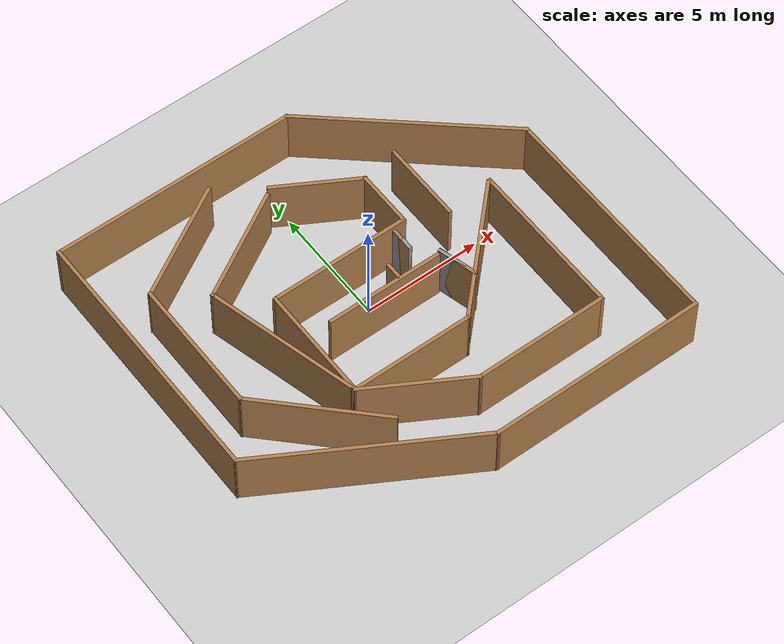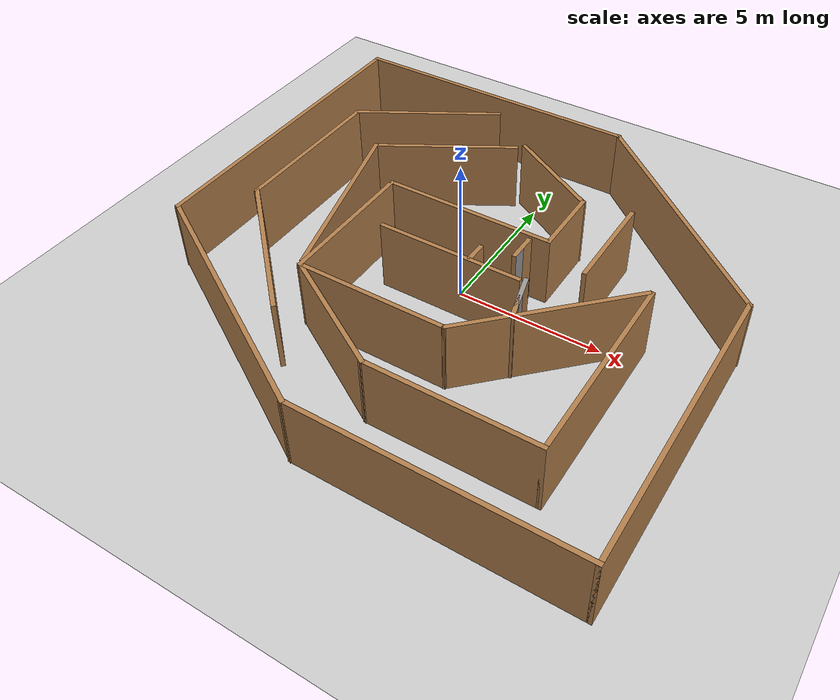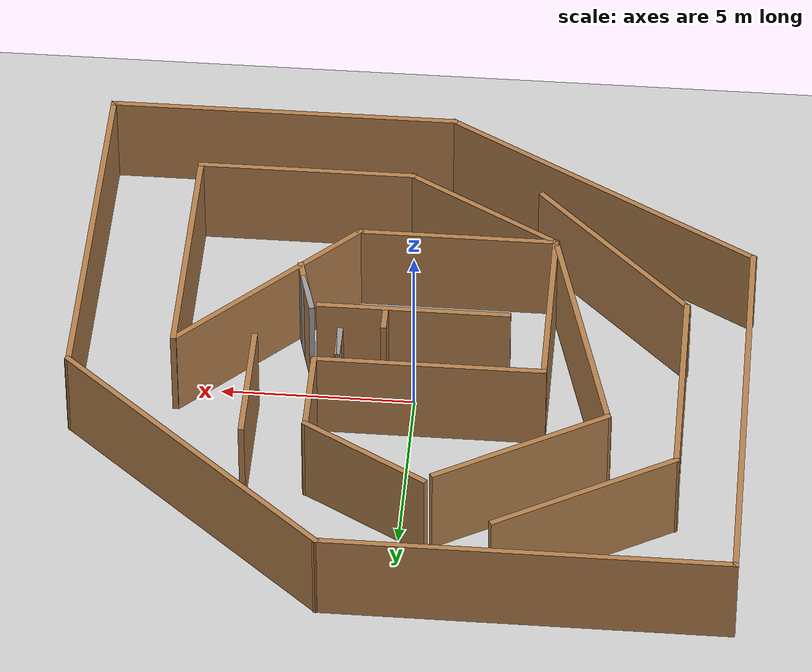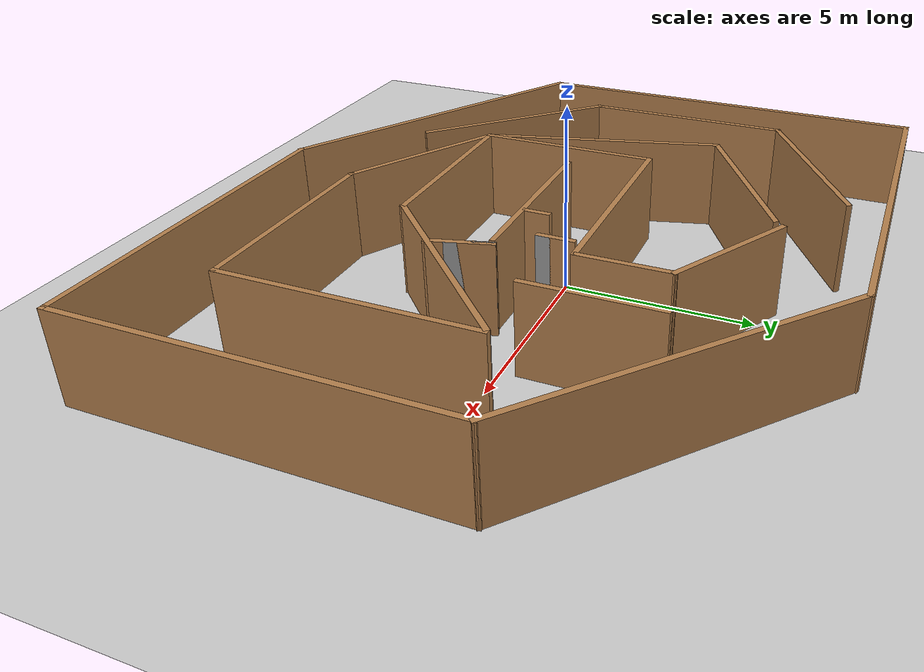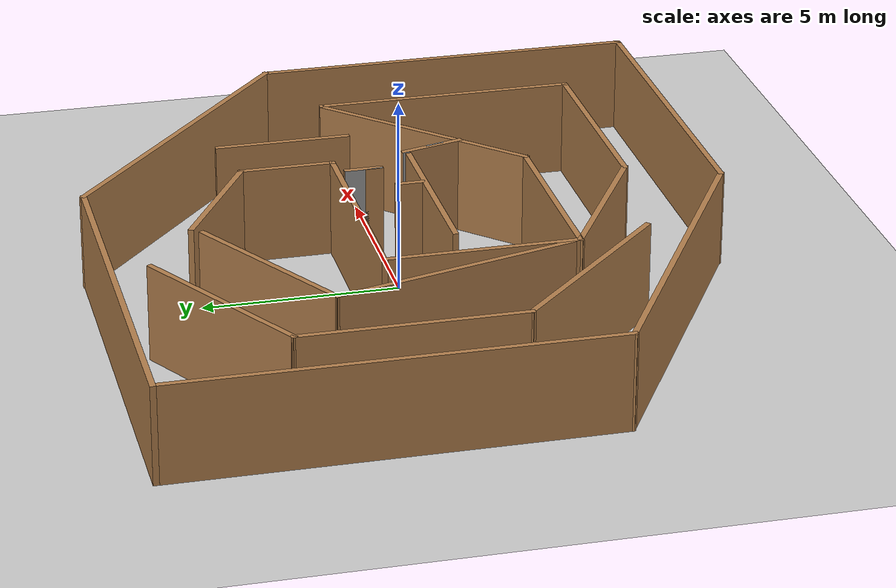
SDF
<sdf version="1.6">
 <world name="default">
  <plugin filename="libcollision_map_creator.so" name="collision_map_creator"/>
  <plugin name="welcome" filename="libwelcome_message.so"/>
  <light name="sun" type="directional">
   <pose>0 0 10 0 -0 0</pose>
   <diffuse>0.8 0.8 0.8 1</diffuse>
   <specular>0.1 0.1 0.1 1</specular>
   <attenuation>
    <range>1000</range>
    <constant>0.9</constant>
    <linear>0.01</linear>
    <quadratic>0.001</quadratic>
   </attenuation>
   <direction>-0.5 0.5 -1</direction>
  </light>
  <model name="ground_plane">
   <static>1</static>
   <link name="link">
    <collision name="collision">
     <geometry><plane><normal>0 0 1</normal><size>100 100</size></plane></geometry>
     <surface><friction><ode><mu>100</mu><mu2>50</mu2></ode></friction></surface>
    </collision>
    <visual name="visual">
     <cast_shadows>0</cast_shadows>
     <geometry><plane><normal>0 0 1</normal><size>100 100</size></plane></geometry>
     <material>
      <script><uri>file://media/materials/scripts/gazebo.material</uri><name>Gazebo/Grey</name></script>
     </material>
    </visual>
   </link>
  </model>
  <gravity>0 0 -9.8</gravity>
  <magnetic_field>6e-06 2.3e-05 -4.2e-05</magnetic_field>
  <atmosphere type="adiabatic"/>
  <physics name="default_physics" default="0" type="ode">
   <max_step_size>0.001</max_step_size>
   <real_time_factor>1</real_time_factor>
   <real_time_update_rate>1000</real_time_update_rate>
  </physics>
  <scene><ambient>0.4 0.4 0.4 1</ambient><background>0.7 0.7 0.7 1</background><shadows>1</shadows></scene>
  <spherical_coordinates>
   <surface_model>EARTH_WGS84</surface_model>
   <latitude_deg>0</latitude_deg>
   <longitude_deg>0</longitude_deg>
   <elevation>0</elevation>
   <heading_deg>0</heading_deg>
  </spherical_coordinates>
  <model name="maze">
   <pose>0.091853 -0.30872 0 0 -0 0</pose>
   <link name="Wall_11">
    <collision name="Wall_11_Collision">
     <geometry><box><size>6 0.15 2.5</size></box></geometry>
     <pose>0 0 1.25 0 -0 0</pose>
    </collision>
    <visual name="Wall_11_Visual">
     <pose>0 0 1.25 0 -0 0</pose>
     <geometry><box><size>6 0.15 2.5</size></box></geometry>
     <material>
      <script><uri>file://media/materials/scripts/gazebo.material</uri><name>Gazebo/Wood</name></script>
      <ambient>1 1 1 1</ambient>
     </material>
    </visual>
    <pose>-0.547521 1.46082 0 0 -0 3.14159</pose>
   </link>
   <link name="Wall_12">
    <collision name="Wall_12_Collision">
     <geometry><box><size>5 0.15 2.5</size></box></geometry>
     <pose>0 0 1.25 0 -0 0</pose>
    </collision>
    <visual name="Wall_12_Visual">
     <pose>0 0 1.25 0 -0 0</pose>
     <geometry><box><size>5 0.15 2.5</size></box></geometry>
     <material>
      <script><uri>file://media/materials/scripts/gazebo.material</uri><name>Gazebo/Wood</name></script>
      <ambient>1 1 1 1</ambient>
     </material>
    </visual>
    <pose>-3.47252 -0.964179 0 0 0 -1.5708</pose>
   </link>
   <link name="Wall_13">
    <collision name="Wall_13_Collision">
     <geometry><box><size>5.25 0.15 2.5</size></box></geometry>
     <pose>0 0 1.25 0 -0 0</pose>
    </collision>
    <visual name="Wall_13_Visual">
     <pose>0 0 1.25 0 -0 0</pose>
     <geometry><box><size>5.25 0.15 2.5</size></box></geometry>
     <material>
      <script><uri>file://media/materials/scripts/gazebo.material</uri><name>Gazebo/Wood</name></script>
      <ambient>1 1 1 1</ambient>
     </material>
    </visual>
    <pose>-0.922521 -3.38918 0 0 -0 0</pose>
   </link>
   <link name="Wall_14">
    <collision name="Wall_14_Collision">
     <geometry><box><size>6.25 0.15 2.5</size></box></geometry>
     <pose>0 0 1.25 0 -0 0</pose>
    </collision>
    <visual name="Wall_14_Visual">
     <pose>0 0 1.25 0 -0 0</pose>
     <geometry><box><size>6.25 0.15 2.5</size></box></geometry>
     <material>
      <script><uri>file://media/materials/scripts/gazebo.material</uri><name>Gazebo/Wood</name></script>
      <ambient>1 1 1 1</ambient>
     </material>
    </visual>
    <pose>3.78416 -1.2325 0 0 -0 0.785398</pose>
   </link>
   <link name="Wall_17">
    <collision name="Wall_17_Collision">
     <geometry><box><size>2.5 0.15 2.5</size></box></geometry>
     <pose>0 0 1.25 0 -0 0</pose>
    </collision>
    <visual name="Wall_17_Visual">
     <pose>0 0 1.25 0 -0 0</pose>
     <geometry><box><size>2.5 0.15 2.5</size></box></geometry>
     <material>
      <script><uri>file://media/materials/scripts/gazebo.material</uri><name>Gazebo/Wood</name></script>
      <ambient>1 1 1 1</ambient>
     </material>
    </visual>
    <pose>2.37748 2.63582 0 0 -0 1.5708</pose>
   </link>
   <link name="Wall_18">
    <collision name="Wall_18_Collision">
     <geometry><box><size>3.75 0.15 2.5</size></box></geometry>
     <pose>0 0 1.25 0 -0 0</pose>
    </collision>
    <visual name="Wall_18_Visual">
     <pose>0 0 1.25 0 -0 0</pose>
     <geometry><box><size>3.75 0.15 2.5</size></box></geometry>
     <material>
      <script><uri>file://media/materials/scripts/gazebo.material</uri><name>Gazebo/Wood</name></script>
      <ambient>1 1 1 1</ambient>
     </material>
    </visual>
    <pose>0.818633 4.71082 0 0 -0 2.61799</pose>
   </link>
   <link name="Wall_21">
    <collision name="Wall_21_Collision">
     <geometry><box><size>5 0.15 2.5</size></box></geometry>
     <pose>0 0 1.25 0 -0 0</pose>
    </collision>
    <visual name="Wall_21_Visual">
     <pose>0 0 1.25 0 -0 0</pose>
     <geometry><box><size>5 0.15 2.5</size></box></geometry>
     <material>
      <script><uri>file://media/materials/scripts/gazebo.material</uri><name>Gazebo/Wood</name></script>
      <ambient>1 1 1 1</ambient>
     </material>
    </visual>
    <pose>-3.08045 4.17251 0 0 0 -2.61799</pose>
   </link>
   <link name="Wall_22">
    <collision name="Wall_22_Collision">
     <geometry><box><size>6.5 0.15 2.5</size></box></geometry>
     <pose>0 0 1.25 0 -0 0</pose>
    </collision>
    <visual name="Wall_22_Visual">
     <pose>0 0 1.25 0 -0 0</pose>
     <geometry><box><size>6.5 0.15 2.5</size></box></geometry>
     <material>
      <script><uri>file://media/materials/scripts/gazebo.material</uri><name>Gazebo/Wood</name></script>
      <ambient>1 1 1 1</ambient>
     </material>
    </visual>
    <pose>-4.35881 -0.106802 0 0 0 -1.309</pose>
   </link>
   <link name="Wall_25">
    <collision name="Wall_25_Collision">
     <geometry><box><size>5.75 0.15 2.5</size></box></geometry>
     <pose>0 0 1.25 0 -0 0</pose>
    </collision>
    <visual name="Wall_25_Visual">
     <pose>0 0 1.25 0 -0 0</pose>
     <geometry><box><size>5.75 0.15 2.5</size></box></geometry>
     <material>
      <script><uri>file://media/materials/scripts/gazebo.material</uri><name>Gazebo/Wood</name></script>
      <ambient>1 1 1 1</ambient>
     </material>
    </visual>
    <pose>3.22612 -5.65243 0 0 -0 0</pose>
   </link>
   <link name="Wall_26">
    <collision name="Wall_26_Collision">
     <geometry><box><size>6.75 0.15 2.5</size></box></geometry>
     <pose>0 0 1.25 0 -0 0</pose>
    </collision>
    <visual name="Wall_26_Visual">
     <pose>0 0 1.25 0 -0 0</pose>
     <geometry><box><size>6.75 0.15 2.5</size></box></geometry>
     <material>
      <script><uri>file://media/materials/scripts/gazebo.material</uri><name>Gazebo/Wood</name></script>
      <ambient>1 1 1 1</ambient>
     </material>
    </visual>
    <pose>6.02612 -2.35243 0 0 -0 1.5708</pose>
   </link>
   <link name="Wall_29">
    <collision name="Wall_29_Collision">
     <geometry><box><size>4.65796 0.15 2.5</size></box></geometry>
     <pose>0 0 1.25 0 -0 0</pose>
    </collision>
    <visual name="Wall_29_Visual">
     <pose>0 0 1.25 0 -0 0</pose>
     <geometry><box><size>4.65796 0.15 2.5</size></box></geometry>
     <material>
      <script><uri>file://media/materials/scripts/gazebo.material</uri><name>Gazebo/Wood</name></script>
      <ambient>1 1 1 1</ambient>
     </material>
    </visual>
    <pose>-1.5232 -4.52081 0 0 -0 2.61562</pose>
   </link>
   <link name="Wall_3">
    <collision name="Wall_3_Collision">
     <geometry><box><size>10.5 0.15 2.5</size></box></geometry>
     <pose>0 0 1.25 0 -0 0</pose>
    </collision>
    <visual name="Wall_3_Visual">
     <pose>0 0 1.25 0 -0 0</pose>
     <geometry><box><size>10.5 0.15 2.5</size></box></geometry>
     <material>
      <script><uri>file://media/materials/scripts/gazebo.material</uri><name>Gazebo/Wood</name></script>
      <ambient>1 1 1 1</ambient>
     </material>
    </visual>
    <pose>-3.42534 7.88583 0 0 -0 3.14159</pose>
   </link>
   <link name="Wall_4">
    <collision name="Wall_4_Collision">
     <geometry><box><size>11.25 0.15 2.5</size></box></geometry>
     <pose>0 0 1.25 0 -0 0</pose>
    </collision>
    <visual name="Wall_4_Visual">
     <pose>0 0 1.25 0 -0 0</pose>
     <geometry><box><size>11.25 0.15 2.5</size></box></geometry>
     <material>
      <script><uri>file://media/materials/scripts/gazebo.material</uri><name>Gazebo/Wood</name></script>
      <ambient>1 1 1 1</ambient>
     </material>
    </visual>
    <pose>-8.60034 2.33583 0 0 0 -1.5708</pose>
   </link>
   <link name="Wall_5">
    <collision name="Wall_5_Collision">
     <geometry><box><size>9.5 0.15 2.5</size></box></geometry>
     <pose>0 0 1.25 0 -0 0</pose>
    </collision>
    <visual name="Wall_5_Visual">
     <pose>0 0 1.25 0 -0 0</pose>
     <geometry><box><size>9.5 0.15 2.5</size></box></geometry>
     <material>
      <script><uri>file://media/materials/scripts/gazebo.material</uri><name>Gazebo/Wood</name></script>
      <ambient>1 1 1 1</ambient>
     </material>
    </visual>
    <pose>-4.55167 -5.55167 0 0 0 -0.523599</pose>
   </link>
   <link name="Wall_6">
    <collision name="Wall_6_Collision">
     <geometry><box><size>9.25 0.15 2.5</size></box></geometry>
     <pose>0 0 1.25 0 -0 0</pose>
    </collision>
    <visual name="Wall_6_Visual">
     <pose>0 0 1.25 0 -0 0</pose>
     <geometry><box><size>9.25 0.15 2.5</size></box></geometry>
     <material>
      <script><uri>file://media/materials/scripts/gazebo.material</uri><name>Gazebo/Wood</name></script>
      <ambient>1 1 1 1</ambient>
     </material>
    </visual>
    <pose>4.047 -7.88917 0 0 -0 0</pose>
   </link>
   <link name="Wall_7">
    <collision name="Wall_7_Collision">
     <geometry><box><size>10 0.15 2.5</size></box></geometry>
     <pose>0 0 1.25 0 -0 0</pose>
    </collision>
    <visual name="Wall_7_Visual">
     <pose>0 0 1.25 0 -0 0</pose>
     <geometry><box><size>10 0.15 2.5</size></box></geometry>
     <material>
      <script><uri>file://media/materials/scripts/gazebo.material</uri><name>Gazebo/Wood</name></script>
      <ambient>1 1 1 1</ambient>
     </material>
    </visual>
    <pose>8.597 -2.96417 0 0 -0 1.5708</pose>
   </link>
   <link name="Wall_8">
    <collision name="Wall_8_Collision">
     <geometry><box><size>9.20492 0.15 2.5</size></box></geometry>
     <pose>0 0 1.25 0 -0 0</pose>
    </collision>
    <visual name="Wall_8_Visual">
     <pose>0 0 1.25 0 -0 0</pose>
     <geometry><box><size>9.20492 0.15 2.5</size></box></geometry>
     <material>
      <script><uri>file://media/materials/scripts/gazebo.material</uri><name>Gazebo/Wood</name></script>
      <ambient>1 1 1 1</ambient>
     </material>
    </visual>
    <pose>5.17333 4.92333 0 0 -0 2.42828</pose>
   </link>
   <static>1</static>
  </model>
  <model name="maze_0">
   <pose>-1.43026 0.549777 0 0 -0 0</pose>
   <link name="Wall_1">
    <collision name="Wall_1_Collision">
     <geometry><box><size>5 0.15 2.5</size></box></geometry>
     <pose>0 0 1.25 0 -0 0</pose>
    </collision>
    <visual name="Wall_1_Visual">
     <pose>0 0 1.25 0 -0 0</pose>
     <geometry><box><size>5 0.15 2.5</size></box></geometry>
     <material>
      <script><uri>file://media/materials/scripts/gazebo.material</uri><name>Gazebo/Wood</name></script>
      <ambient>1 1 1 1</ambient>
     </material>
    </visual>
    <pose>1.52393 -1.40125 0 0 -0 0</pose>
   </link>
   <link name="Wall_3">
    <collision name="Wall_3_Collision">
     <geometry><box><size>3.5 0.15 2.5</size></box></geometry>
     <pose>0 0 1.25 0 -0 0</pose>
    </collision>
    <visual name="Wall_3_Visual">
     <pose>0 0 1.25 0 -0 0</pose>
     <geometry><box><size>3.5 0.15 2.5</size></box></geometry>
     <material>
      <script><uri>file://media/materials/scripts/gazebo.material</uri><name>Gazebo/Wood</name></script>
      <ambient>1 1 1 1</ambient>
     </material>
    </visual>
    <pose>5.48807 1.56708 0 0 0 -1.5708</pose>
   </link>
   <link name="Wall_5">
    <collision name="Wall_5_Collision">
     <geometry><box><size>5.25 0.15 2.5</size></box></geometry>
     <pose>0 0 1.25 0 -0 0</pose>
    </collision>
    <visual name="Wall_5_Visual">
     <pose>0 0 1.25 0 -0 0</pose>
     <geometry><box><size>5.25 0.15 2.5</size></box></geometry>
     <material>
      <script><uri>file://media/materials/scripts/gazebo.material</uri><name>Gazebo/Wood</name></script>
      <ambient>1 1 1 1</ambient>
     </material>
    </visual>
    <pose>-3.24864 4.78171 0 0 0 -2.61799</pose>
   </link>
   <link name="Wall_6">
    <collision name="Wall_6_Collision">
     <geometry><box><size>5.75 0.15 2.5</size></box></geometry>
     <pose>0 0 1.25 0 -0 0</pose>
    </collision>
    <visual name="Wall_6_Visual">
     <pose>0 0 1.25 0 -0 0</pose>
     <geometry><box><size>5.75 0.15 2.5</size></box></geometry>
     <material>
      <script><uri>file://media/materials/scripts/gazebo.material</uri><name>Gazebo/Wood</name></script>
      <ambient>1 1 1 1</ambient>
     </material>
    </visual>
    <pose>-5.457 0.706706 0 0 0 -1.5708</pose>
   </link>
   <link name="Wall_8">
    <collision name="Wall_8_Collision">
     <geometry><box><size>5.75 0.15 2.5</size></box></geometry>
     <pose>0 0 1.25 0 -0 0</pose>
    </collision>
    <visual name="Wall_8_Visual">
     <pose>0 0 1.25 0 -0 0</pose>
     <geometry><box><size>5.75 0.15 2.5</size></box></geometry>
     <material>
      <script><uri>file://media/materials/scripts/gazebo.material</uri><name>Gazebo/Wood</name></script>
      <ambient>1 1 1 1</ambient>
     </material>
    </visual>
    <pose>-3.4771 -4.07319 0 0 0 -0.785398</pose>
   </link>
   <static>1</static>
  </model>
  <model name="maze_1">
   <pose>1.97781 -0.716678 0 0 -0 0</pose>
   <link name="Wall_0">
    <collision name="Wall_0_Collision">
     <geometry><box><size>0.75 0.15 2.5</size></box></geometry>
     <pose>0 0 1.25 0 -0 0</pose>
    </collision>
    <visual name="Wall_0_Visual">
     <pose>0 0 1.25 0 -0 0</pose>
     <geometry><box><size>0.75 0.15 2.5</size></box></geometry>
     <material>
      <script><uri>file://media/materials/scripts/gazebo.material</uri><name>Gazebo/Wood</name></script>
      <ambient>1 1 1 1</ambient>
     </material>
    </visual>
    <pose>-1.1711 0.241633 0 0 -0 1.5708</pose>
   </link>
   <link name="Wall_2">
    <collision name="Wall_2_Collision">
     <geometry><box><size>1 0.15 2.5</size></box></geometry>
     <pose>0 0 1.25 0 -0 0</pose>
    </collision>
    <visual name="Wall_2_Visual">
     <pose>0 0 1.25 0 -0 0</pose>
     <geometry><box><size>1 0.15 2.5</size></box></geometry>
     <material>
      <script><uri>file://media/materials/scripts/gazebo.material</uri><name>Gazebo/Grey</name></script>
      <ambient>1 1 1 1</ambient>
     </material>
    </visual>
    <pose>-0.076069 1.18791 0 0 -0 1.5708</pose>
   </link>
   <link name="Wall_3">
    <collision name="Wall_3_Collision">
     <geometry><box><size>1 0.15 2.5</size></box></geometry>
     <pose>0 0 1.25 0 -0 0</pose>
    </collision>
    <visual name="Wall_3_Visual">
     <pose>0 0 1.25 0 -0 0</pose>
     <geometry><box><size>1 0.15 2.5</size></box></geometry>
     <material>
      <script><uri>file://media/materials/scripts/gazebo.material</uri><name>Gazebo/Wood</name></script>
      <ambient>1 1 1 1</ambient>
     </material>
    </visual>
    <pose>-0.076069 1.18791 0 0 0 -1.5708</pose>
   </link>
   <link name="Wall_5">
    <collision name="Wall_5_Collision">
     <geometry><box><size>1.25 0.15 2.5</size></box></geometry>
     <pose>0 0 1.25 0 -0 0</pose>
    </collision>
    <visual name="Wall_5_Visual">
     <pose>0 0 1.25 0 -0 0</pose>
     <geometry><box><size>1.25 0.15 2.5</size></box></geometry>
     <material>
      <script><uri>file://media/materials/scripts/gazebo.material</uri><name>Gazebo/Grey</name></script>
      <ambient>1 1 1 1</ambient>
     </material>
    </visual>
    <pose>0.882483 -0.581828 0 0 -0 1.8326</pose>
   </link>
   <link name="Wall_6">
    <collision name="Wall_6_Collision">
     <geometry><box><size>1.75 0.15 2.5</size></box></geometry>
     <pose>0 0 1.25 0 -0 0</pose>
    </collision>
    <visual name="Wall_6_Visual">
     <pose>0 0 1.25 0 -0 0</pose>
     <geometry><box><size>1.75 0.15 2.5</size></box></geometry>
     <material>
      <script><uri>file://media/materials/scripts/gazebo.material</uri><name>Gazebo/Wood</name></script>
      <ambient>1 1 1 1</ambient>
     </material>
    </visual>
    <pose>0.947188 -0.823309 0 0 0 -1.309</pose>
   </link>
   <static>1</static>
  </model>
 </world>
</sdf>
